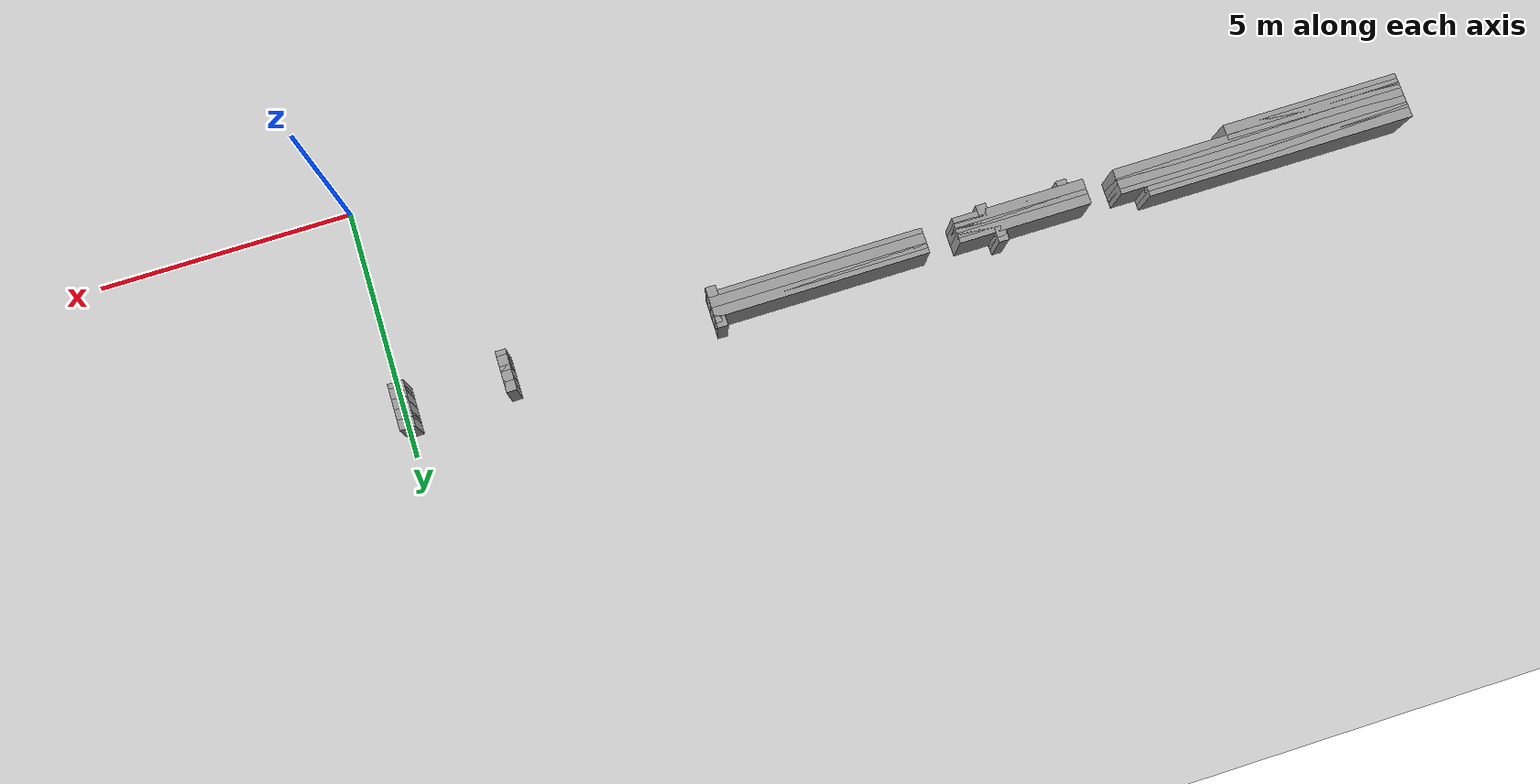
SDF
<sdf version="1.6">
 <world name="GridMap">
  <include><uri>model://sun</uri></include>
  <include><uri>model://ground_plane</uri></include>
  <model name="GridMap">
   <link name="Wall_(181.5,38.0)">
    <collision name="Wall_(181.5,38.0)_Collision">
     <geometry><box><size>3.5 0.2 1.0</size></box></geometry>
     <pose>-18.150000000000002 3.8000000000000003 0.5 0 -0 0</pose>
    </collision>
    <visual name="Wall_(181.5,38.0)_Visual">
     <geometry><box><size>3.5 0.2 1.0</size></box></geometry>
     <pose>-18.150000000000002 3.8000000000000003 0.5 0 -0 0</pose>
     <material>
      <script><uri>file://media/materials/scripts/gazebo.material</uri><name>Gazebo/Grey</name></script>
      <ambient>1 1 1 1</ambient>
     </material>
     <meta><layer>0</layer></meta>
    </visual>
    <pose>0 0 0.5 0 -0 0</pose>
   </link>
   <link name="Wall_(1.5,39.0)">
    <collision name="Wall_(1.5,39.0)_Collision">
     <geometry><box><size>0.30000000000000004 0.2 1.0</size></box></geometry>
     <pose>-0.15000000000000002 3.9000000000000004 0.5 0 -0 0</pose>
    </collision>
    <visual name="Wall_(1.5,39.0)_Visual">
     <geometry><box><size>0.30000000000000004 0.2 1.0</size></box></geometry>
     <pose>-0.15000000000000002 3.9000000000000004 0.5 0 -0 0</pose>
     <material>
      <script><uri>file://media/materials/scripts/gazebo.material</uri><name>Gazebo/Grey</name></script>
      <ambient>1 1 1 1</ambient>
     </material>
     <meta><layer>0</layer></meta>
    </visual>
    <pose>0 0 0.5 0 -0 0</pose>
   </link>
   <link name="Wall_(21.5,39.0)">
    <collision name="Wall_(21.5,39.0)_Collision">
     <geometry><box><size>0.2 0.2 1.0</size></box></geometry>
     <pose>-2.15 3.9000000000000004 0.5 0 -0 0</pose>
    </collision>
    <visual name="Wall_(21.5,39.0)_Visual">
     <geometry><box><size>0.2 0.2 1.0</size></box></geometry>
     <pose>-2.15 3.9000000000000004 0.5 0 -0 0</pose>
     <material>
      <script><uri>file://media/materials/scripts/gazebo.material</uri><name>Gazebo/Grey</name></script>
      <ambient>1 1 1 1</ambient>
     </material>
     <meta><layer>0</layer></meta>
    </visual>
    <pose>0 0 0.5 0 -0 0</pose>
   </link>
   <link name="Wall_(62.0,39.0)">
    <collision name="Wall_(62.0,39.0)_Collision">
     <geometry><box><size>0.2 0.2 1.0</size></box></geometry>
     <pose>-6.2 3.9000000000000004 0.5 0 -0 0</pose>
    </collision>
    <visual name="Wall_(62.0,39.0)_Visual">
     <geometry><box><size>0.2 0.2 1.0</size></box></geometry>
     <pose>-6.2 3.9000000000000004 0.5 0 -0 0</pose>
     <material>
      <script><uri>file://media/materials/scripts/gazebo.material</uri><name>Gazebo/Grey</name></script>
      <ambient>1 1 1 1</ambient>
     </material>
     <meta><layer>0</layer></meta>
    </visual>
    <pose>0 0 0.5 0 -0 0</pose>
   </link>
   <link name="Wall_(115.0,39.0)">
    <collision name="Wall_(115.0,39.0)_Collision">
     <geometry><box><size>0.2 0.2 1.0</size></box></geometry>
     <pose>-11.5 3.9000000000000004 0.5 0 -0 0</pose>
    </collision>
    <visual name="Wall_(115.0,39.0)_Visual">
     <geometry><box><size>0.2 0.2 1.0</size></box></geometry>
     <pose>-11.5 3.9000000000000004 0.5 0 -0 0</pose>
     <material>
      <script><uri>file://media/materials/scripts/gazebo.material</uri><name>Gazebo/Grey</name></script>
      <ambient>1 1 1 1</ambient>
     </material>
     <meta><layer>0</layer></meta>
    </visual>
    <pose>0 0 0.5 0 -0 0</pose>
   </link>
   <link name="Wall_(131.0,39.0)">
    <collision name="Wall_(131.0,39.0)_Collision">
     <geometry><box><size>0.2 0.2 1.0</size></box></geometry>
     <pose>-13.100000000000001 3.9000000000000004 0.5 0 -0 0</pose>
    </collision>
    <visual name="Wall_(131.0,39.0)_Visual">
     <geometry><box><size>0.2 0.2 1.0</size></box></geometry>
     <pose>-13.100000000000001 3.9000000000000004 0.5 0 -0 0</pose>
     <material>
      <script><uri>file://media/materials/scripts/gazebo.material</uri><name>Gazebo/Grey</name></script>
      <ambient>1 1 1 1</ambient>
     </material>
     <meta><layer>0</layer></meta>
    </visual>
    <pose>0 0 0.5 0 -0 0</pose>
   </link>
   <link name="Wall_(181.5,39.0)">
    <collision name="Wall_(181.5,39.0)_Collision">
     <geometry><box><size>3.5 0.2 1.0</size></box></geometry>
     <pose>-18.150000000000002 3.9000000000000004 0.5 0 -0 0</pose>
    </collision>
    <visual name="Wall_(181.5,39.0)_Visual">
     <geometry><box><size>3.5 0.2 1.0</size></box></geometry>
     <pose>-18.150000000000002 3.9000000000000004 0.5 0 -0 0</pose>
     <material>
      <script><uri>file://media/materials/scripts/gazebo.material</uri><name>Gazebo/Grey</name></script>
      <ambient>1 1 1 1</ambient>
     </material>
     <meta><layer>0</layer></meta>
    </visual>
    <pose>0 0 0.5 0 -0 0</pose>
   </link>
   <link name="Wall_(1.5,40.0)">
    <collision name="Wall_(1.5,40.0)_Collision">
     <geometry><box><size>0.30000000000000004 0.2 1.0</size></box></geometry>
     <pose>-0.15000000000000002 4.0 0.5 0 -0 0</pose>
    </collision>
    <visual name="Wall_(1.5,40.0)_Visual">
     <geometry><box><size>0.30000000000000004 0.2 1.0</size></box></geometry>
     <pose>-0.15000000000000002 4.0 0.5 0 -0 0</pose>
     <material>
      <script><uri>file://media/materials/scripts/gazebo.material</uri><name>Gazebo/Grey</name></script>
      <ambient>1 1 1 1</ambient>
     </material>
     <meta><layer>0</layer></meta>
    </visual>
    <pose>0 0 0.5 0 -0 0</pose>
   </link>
   <link name="Wall_(21.5,40.0)">
    <collision name="Wall_(21.5,40.0)_Collision">
     <geometry><box><size>0.2 0.2 1.0</size></box></geometry>
     <pose>-2.15 4.0 0.5 0 -0 0</pose>
    </collision>
    <visual name="Wall_(21.5,40.0)_Visual">
     <geometry><box><size>0.2 0.2 1.0</size></box></geometry>
     <pose>-2.15 4.0 0.5 0 -0 0</pose>
     <material>
      <script><uri>file://media/materials/scripts/gazebo.material</uri><name>Gazebo/Grey</name></script>
      <ambient>1 1 1 1</ambient>
     </material>
     <meta><layer>0</layer></meta>
    </visual>
    <pose>0 0 0.5 0 -0 0</pose>
   </link>
   <link name="Wall_(82.0,40.0)">
    <collision name="Wall_(82.0,40.0)_Collision">
     <geometry><box><size>4.2 0.2 1.0</size></box></geometry>
     <pose>-8.200000000000001 4.0 0.5 0 -0 0</pose>
    </collision>
    <visual name="Wall_(82.0,40.0)_Visual">
     <geometry><box><size>4.2 0.2 1.0</size></box></geometry>
     <pose>-8.200000000000001 4.0 0.5 0 -0 0</pose>
     <material>
      <script><uri>file://media/materials/scripts/gazebo.material</uri><name>Gazebo/Grey</name></script>
      <ambient>1 1 1 1</ambient>
     </material>
     <meta><layer>0</layer></meta>
    </visual>
    <pose>0 0 0.5 0 -0 0</pose>
   </link>
   <link name="Wall_(122.0,40.0)">
    <collision name="Wall_(122.0,40.0)_Collision">
     <geometry><box><size>2.6 0.2 1.0</size></box></geometry>
     <pose>-12.200000000000001 4.0 0.5 0 -0 0</pose>
    </collision>
    <visual name="Wall_(122.0,40.0)_Visual">
     <geometry><box><size>2.6 0.2 1.0</size></box></geometry>
     <pose>-12.200000000000001 4.0 0.5 0 -0 0</pose>
     <material>
      <script><uri>file://media/materials/scripts/gazebo.material</uri><name>Gazebo/Grey</name></script>
      <ambient>1 1 1 1</ambient>
     </material>
     <meta><layer>0</layer></meta>
    </visual>
    <pose>0 0 0.5 0 -0 0</pose>
   </link>
   <link name="Wall_(170.0,40.0)">
    <collision name="Wall_(170.0,40.0)_Collision">
     <geometry><box><size>5.800000000000001 0.2 1.0</size></box></geometry>
     <pose>-17.0 4.0 0.5 0 -0 0</pose>
    </collision>
    <visual name="Wall_(170.0,40.0)_Visual">
     <geometry><box><size>5.800000000000001 0.2 1.0</size></box></geometry>
     <pose>-17.0 4.0 0.5 0 -0 0</pose>
     <material>
      <script><uri>file://media/materials/scripts/gazebo.material</uri><name>Gazebo/Grey</name></script>
      <ambient>1 1 1 1</ambient>
     </material>
     <meta><layer>0</layer></meta>
    </visual>
    <pose>0 0 0.5 0 -0 0</pose>
   </link>
   <link name="Wall_(1.5,41.0)">
    <collision name="Wall_(1.5,41.0)_Collision">
     <geometry><box><size>0.30000000000000004 0.2 1.0</size></box></geometry>
     <pose>-0.15000000000000002 4.1000000000000005 0.5 0 -0 0</pose>
    </collision>
    <visual name="Wall_(1.5,41.0)_Visual">
     <geometry><box><size>0.30000000000000004 0.2 1.0</size></box></geometry>
     <pose>-0.15000000000000002 4.1000000000000005 0.5 0 -0 0</pose>
     <material>
      <script><uri>file://media/materials/scripts/gazebo.material</uri><name>Gazebo/Grey</name></script>
      <ambient>1 1 1 1</ambient>
     </material>
     <meta><layer>0</layer></meta>
    </visual>
    <pose>0 0 0.5 0 -0 0</pose>
   </link>
   <link name="Wall_(21.5,41.0)">
    <collision name="Wall_(21.5,41.0)_Collision">
     <geometry><box><size>0.2 0.2 1.0</size></box></geometry>
     <pose>-2.15 4.1000000000000005 0.5 0 -0 0</pose>
    </collision>
    <visual name="Wall_(21.5,41.0)_Visual">
     <geometry><box><size>0.2 0.2 1.0</size></box></geometry>
     <pose>-2.15 4.1000000000000005 0.5 0 -0 0</pose>
     <material>
      <script><uri>file://media/materials/scripts/gazebo.material</uri><name>Gazebo/Grey</name></script>
      <ambient>1 1 1 1</ambient>
     </material>
     <meta><layer>0</layer></meta>
    </visual>
    <pose>0 0 0.5 0 -0 0</pose>
   </link>
   <link name="Wall_(82.0,41.0)">
    <collision name="Wall_(82.0,41.0)_Collision">
     <geometry><box><size>4.2 0.2 1.0</size></box></geometry>
     <pose>-8.200000000000001 4.1000000000000005 0.5 0 -0 0</pose>
    </collision>
    <visual name="Wall_(82.0,41.0)_Visual">
     <geometry><box><size>4.2 0.2 1.0</size></box></geometry>
     <pose>-8.200000000000001 4.1000000000000005 0.5 0 -0 0</pose>
     <material>
      <script><uri>file://media/materials/scripts/gazebo.material</uri><name>Gazebo/Grey</name></script>
      <ambient>1 1 1 1</ambient>
     </material>
     <meta><layer>0</layer></meta>
    </visual>
    <pose>0 0 0.5 0 -0 0</pose>
   </link>
   <link name="Wall_(122.0,41.0)">
    <collision name="Wall_(122.0,41.0)_Collision">
     <geometry><box><size>2.6 0.2 1.0</size></box></geometry>
     <pose>-12.200000000000001 4.1000000000000005 0.5 0 -0 0</pose>
    </collision>
    <visual name="Wall_(122.0,41.0)_Visual">
     <geometry><box><size>2.6 0.2 1.0</size></box></geometry>
     <pose>-12.200000000000001 4.1000000000000005 0.5 0 -0 0</pose>
     <material>
      <script><uri>file://media/materials/scripts/gazebo.material</uri><name>Gazebo/Grey</name></script>
      <ambient>1 1 1 1</ambient>
     </material>
     <meta><layer>0</layer></meta>
    </visual>
    <pose>0 0 0.5 0 -0 0</pose>
   </link>
   <link name="Wall_(170.0,41.0)">
    <collision name="Wall_(170.0,41.0)_Collision">
     <geometry><box><size>5.800000000000001 0.2 1.0</size></box></geometry>
     <pose>-17.0 4.1000000000000005 0.5 0 -0 0</pose>
    </collision>
    <visual name="Wall_(170.0,41.0)_Visual">
     <geometry><box><size>5.800000000000001 0.2 1.0</size></box></geometry>
     <pose>-17.0 4.1000000000000005 0.5 0 -0 0</pose>
     <material>
      <script><uri>file://media/materials/scripts/gazebo.material</uri><name>Gazebo/Grey</name></script>
      <ambient>1 1 1 1</ambient>
     </material>
     <meta><layer>0</layer></meta>
    </visual>
    <pose>0 0 0.5 0 -0 0</pose>
   </link>
   <link name="Wall_(1.5,42.0)">
    <collision name="Wall_(1.5,42.0)_Collision">
     <geometry><box><size>0.30000000000000004 0.2 1.0</size></box></geometry>
     <pose>-0.15000000000000002 4.2 0.5 0 -0 0</pose>
    </collision>
    <visual name="Wall_(1.5,42.0)_Visual">
     <geometry><box><size>0.30000000000000004 0.2 1.0</size></box></geometry>
     <pose>-0.15000000000000002 4.2 0.5 0 -0 0</pose>
     <material>
      <script><uri>file://media/materials/scripts/gazebo.material</uri><name>Gazebo/Grey</name></script>
      <ambient>1 1 1 1</ambient>
     </material>
     <meta><layer>0</layer></meta>
    </visual>
    <pose>0 0 0.5 0 -0 0</pose>
   </link>
   <link name="Wall_(21.5,42.0)">
    <collision name="Wall_(21.5,42.0)_Collision">
     <geometry><box><size>0.2 0.2 1.0</size></box></geometry>
     <pose>-2.15 4.2 0.5 0 -0 0</pose>
    </collision>
    <visual name="Wall_(21.5,42.0)_Visual">
     <geometry><box><size>0.2 0.2 1.0</size></box></geometry>
     <pose>-2.15 4.2 0.5 0 -0 0</pose>
     <material>
      <script><uri>file://media/materials/scripts/gazebo.material</uri><name>Gazebo/Grey</name></script>
      <ambient>1 1 1 1</ambient>
     </material>
     <meta><layer>0</layer></meta>
    </visual>
    <pose>0 0 0.5 0 -0 0</pose>
   </link>
   <link name="Wall_(82.0,42.0)">
    <collision name="Wall_(82.0,42.0)_Collision">
     <geometry><box><size>4.2 0.2 1.0</size></box></geometry>
     <pose>-8.200000000000001 4.2 0.5 0 -0 0</pose>
    </collision>
    <visual name="Wall_(82.0,42.0)_Visual">
     <geometry><box><size>4.2 0.2 1.0</size></box></geometry>
     <pose>-8.200000000000001 4.2 0.5 0 -0 0</pose>
     <material>
      <script><uri>file://media/materials/scripts/gazebo.material</uri><name>Gazebo/Grey</name></script>
      <ambient>1 1 1 1</ambient>
     </material>
     <meta><layer>0</layer></meta>
    </visual>
    <pose>0 0 0.5 0 -0 0</pose>
   </link>
   <link name="Wall_(122.0,42.0)">
    <collision name="Wall_(122.0,42.0)_Collision">
     <geometry><box><size>2.6 0.2 1.0</size></box></geometry>
     <pose>-12.200000000000001 4.2 0.5 0 -0 0</pose>
    </collision>
    <visual name="Wall_(122.0,42.0)_Visual">
     <geometry><box><size>2.6 0.2 1.0</size></box></geometry>
     <pose>-12.200000000000001 4.2 0.5 0 -0 0</pose>
     <material>
      <script><uri>file://media/materials/scripts/gazebo.material</uri><name>Gazebo/Grey</name></script>
      <ambient>1 1 1 1</ambient>
     </material>
     <meta><layer>0</layer></meta>
    </visual>
    <pose>0 0 0.5 0 -0 0</pose>
   </link>
   <link name="Wall_(170.0,42.0)">
    <collision name="Wall_(170.0,42.0)_Collision">
     <geometry><box><size>5.800000000000001 0.2 1.0</size></box></geometry>
     <pose>-17.0 4.2 0.5 0 -0 0</pose>
    </collision>
    <visual name="Wall_(170.0,42.0)_Visual">
     <geometry><box><size>5.800000000000001 0.2 1.0</size></box></geometry>
     <pose>-17.0 4.2 0.5 0 -0 0</pose>
     <material>
      <script><uri>file://media/materials/scripts/gazebo.material</uri><name>Gazebo/Grey</name></script>
      <ambient>1 1 1 1</ambient>
     </material>
     <meta><layer>0</layer></meta>
    </visual>
    <pose>0 0 0.5 0 -0 0</pose>
   </link>
   <link name="Wall_(1.5,43.0)">
    <collision name="Wall_(1.5,43.0)_Collision">
     <geometry><box><size>0.30000000000000004 0.2 1.0</size></box></geometry>
     <pose>-0.15000000000000002 4.3 0.5 0 -0 0</pose>
    </collision>
    <visual name="Wall_(1.5,43.0)_Visual">
     <geometry><box><size>0.30000000000000004 0.2 1.0</size></box></geometry>
     <pose>-0.15000000000000002 4.3 0.5 0 -0 0</pose>
     <material>
      <script><uri>file://media/materials/scripts/gazebo.material</uri><name>Gazebo/Grey</name></script>
      <ambient>1 1 1 1</ambient>
     </material>
     <meta><layer>0</layer></meta>
    </visual>
    <pose>0 0 0.5 0 -0 0</pose>
   </link>
   <link name="Wall_(21.5,43.0)">
    <collision name="Wall_(21.5,43.0)_Collision">
     <geometry><box><size>0.2 0.2 1.0</size></box></geometry>
     <pose>-2.15 4.3 0.5 0 -0 0</pose>
    </collision>
    <visual name="Wall_(21.5,43.0)_Visual">
     <geometry><box><size>0.2 0.2 1.0</size></box></geometry>
     <pose>-2.15 4.3 0.5 0 -0 0</pose>
     <material>
      <script><uri>file://media/materials/scripts/gazebo.material</uri><name>Gazebo/Grey</name></script>
      <ambient>1 1 1 1</ambient>
     </material>
     <meta><layer>0</layer></meta>
    </visual>
    <pose>0 0 0.5 0 -0 0</pose>
   </link>
   <link name="Wall_(82.0,43.0)">
    <collision name="Wall_(82.0,43.0)_Collision">
     <geometry><box><size>4.2 0.2 1.0</size></box></geometry>
     <pose>-8.200000000000001 4.3 0.5 0 -0 0</pose>
    </collision>
    <visual name="Wall_(82.0,43.0)_Visual">
     <geometry><box><size>4.2 0.2 1.0</size></box></geometry>
     <pose>-8.200000000000001 4.3 0.5 0 -0 0</pose>
     <material>
      <script><uri>file://media/materials/scripts/gazebo.material</uri><name>Gazebo/Grey</name></script>
      <ambient>1 1 1 1</ambient>
     </material>
     <meta><layer>0</layer></meta>
    </visual>
    <pose>0 0 0.5 0 -0 0</pose>
   </link>
   <link name="Wall_(122.0,43.0)">
    <collision name="Wall_(122.0,43.0)_Collision">
     <geometry><box><size>2.6 0.2 1.0</size></box></geometry>
     <pose>-12.200000000000001 4.3 0.5 0 -0 0</pose>
    </collision>
    <visual name="Wall_(122.0,43.0)_Visual">
     <geometry><box><size>2.6 0.2 1.0</size></box></geometry>
     <pose>-12.200000000000001 4.3 0.5 0 -0 0</pose>
     <material>
      <script><uri>file://media/materials/scripts/gazebo.material</uri><name>Gazebo/Grey</name></script>
      <ambient>1 1 1 1</ambient>
     </material>
     <meta><layer>0</layer></meta>
    </visual>
    <pose>0 0 0.5 0 -0 0</pose>
   </link>
   <link name="Wall_(170.0,43.0)">
    <collision name="Wall_(170.0,43.0)_Collision">
     <geometry><box><size>5.800000000000001 0.2 1.0</size></box></geometry>
     <pose>-17.0 4.3 0.5 0 -0 0</pose>
    </collision>
    <visual name="Wall_(170.0,43.0)_Visual">
     <geometry><box><size>5.800000000000001 0.2 1.0</size></box></geometry>
     <pose>-17.0 4.3 0.5 0 -0 0</pose>
     <material>
      <script><uri>file://media/materials/scripts/gazebo.material</uri><name>Gazebo/Grey</name></script>
      <ambient>1 1 1 1</ambient>
     </material>
     <meta><layer>0</layer></meta>
    </visual>
    <pose>0 0 0.5 0 -0 0</pose>
   </link>
   <link name="Wall_(1.5,44.0)">
    <collision name="Wall_(1.5,44.0)_Collision">
     <geometry><box><size>0.30000000000000004 0.2 1.0</size></box></geometry>
     <pose>-0.15000000000000002 4.4 0.5 0 -0 0</pose>
    </collision>
    <visual name="Wall_(1.5,44.0)_Visual">
     <geometry><box><size>0.30000000000000004 0.2 1.0</size></box></geometry>
     <pose>-0.15000000000000002 4.4 0.5 0 -0 0</pose>
     <material>
      <script><uri>file://media/materials/scripts/gazebo.material</uri><name>Gazebo/Grey</name></script>
      <ambient>1 1 1 1</ambient>
     </material>
     <meta><layer>0</layer></meta>
    </visual>
    <pose>0 0 0.5 0 -0 0</pose>
   </link>
   <link name="Wall_(21.5,44.0)">
    <collision name="Wall_(21.5,44.0)_Collision">
     <geometry><box><size>0.2 0.2 1.0</size></box></geometry>
     <pose>-2.15 4.4 0.5 0 -0 0</pose>
    </collision>
    <visual name="Wall_(21.5,44.0)_Visual">
     <geometry><box><size>0.2 0.2 1.0</size></box></geometry>
     <pose>-2.15 4.4 0.5 0 -0 0</pose>
     <material>
      <script><uri>file://media/materials/scripts/gazebo.material</uri><name>Gazebo/Grey</name></script>
      <ambient>1 1 1 1</ambient>
     </material>
     <meta><layer>0</layer></meta>
    </visual>
    <pose>0 0 0.5 0 -0 0</pose>
   </link>
   <link name="Wall_(62.0,44.0)">
    <collision name="Wall_(62.0,44.0)_Collision">
     <geometry><box><size>0.2 0.2 1.0</size></box></geometry>
     <pose>-6.2 4.4 0.5 0 -0 0</pose>
    </collision>
    <visual name="Wall_(62.0,44.0)_Visual">
     <geometry><box><size>0.2 0.2 1.0</size></box></geometry>
     <pose>-6.2 4.4 0.5 0 -0 0</pose>
     <material>
      <script><uri>file://media/materials/scripts/gazebo.material</uri><name>Gazebo/Grey</name></script>
      <ambient>1 1 1 1</ambient>
     </material>
     <meta><layer>0</layer></meta>
    </visual>
    <pose>0 0 0.5 0 -0 0</pose>
   </link>
   <link name="Wall_(117.0,44.0)">
    <collision name="Wall_(117.0,44.0)_Collision">
     <geometry><box><size>0.2 0.2 1.0</size></box></geometry>
     <pose>-11.700000000000001 4.4 0.5 0 -0 0</pose>
    </collision>
    <visual name="Wall_(117.0,44.0)_Visual">
     <geometry><box><size>0.2 0.2 1.0</size></box></geometry>
     <pose>-11.700000000000001 4.4 0.5 0 -0 0</pose>
     <material>
      <script><uri>file://media/materials/scripts/gazebo.material</uri><name>Gazebo/Grey</name></script>
      <ambient>1 1 1 1</ambient>
     </material>
     <meta><layer>0</layer></meta>
    </visual>
    <pose>0 0 0.5 0 -0 0</pose>
   </link>
   <link name="Wall_(172.5,44.0)">
    <collision name="Wall_(172.5,44.0)_Collision">
     <geometry><box><size>5.300000000000001 0.2 1.0</size></box></geometry>
     <pose>-17.25 4.4 0.5 0 -0 0</pose>
    </collision>
    <visual name="Wall_(172.5,44.0)_Visual">
     <geometry><box><size>5.300000000000001 0.2 1.0</size></box></geometry>
     <pose>-17.25 4.4 0.5 0 -0 0</pose>
     <material>
      <script><uri>file://media/materials/scripts/gazebo.material</uri><name>Gazebo/Grey</name></script>
      <ambient>1 1 1 1</ambient>
     </material>
     <meta><layer>0</layer></meta>
    </visual>
    <pose>0 0 0.5 0 -0 0</pose>
   </link>
   <link name="Wall_(1.5,45.0)">
    <collision name="Wall_(1.5,45.0)_Collision">
     <geometry><box><size>0.30000000000000004 0.2 1.0</size></box></geometry>
     <pose>-0.15000000000000002 4.5 0.5 0 -0 0</pose>
    </collision>
    <visual name="Wall_(1.5,45.0)_Visual">
     <geometry><box><size>0.30000000000000004 0.2 1.0</size></box></geometry>
     <pose>-0.15000000000000002 4.5 0.5 0 -0 0</pose>
     <material>
      <script><uri>file://media/materials/scripts/gazebo.material</uri><name>Gazebo/Grey</name></script>
      <ambient>1 1 1 1</ambient>
     </material>
     <meta><layer>0</layer></meta>
    </visual>
    <pose>0 0 0.5 0 -0 0</pose>
   </link>
   <link name="Wall_(21.5,45.0)">
    <collision name="Wall_(21.5,45.0)_Collision">
     <geometry><box><size>0.2 0.2 1.0</size></box></geometry>
     <pose>-2.15 4.5 0.5 0 -0 0</pose>
    </collision>
    <visual name="Wall_(21.5,45.0)_Visual">
     <geometry><box><size>0.2 0.2 1.0</size></box></geometry>
     <pose>-2.15 4.5 0.5 0 -0 0</pose>
     <material>
      <script><uri>file://media/materials/scripts/gazebo.material</uri><name>Gazebo/Grey</name></script>
      <ambient>1 1 1 1</ambient>
     </material>
     <meta><layer>0</layer></meta>
    </visual>
    <pose>0 0 0.5 0 -0 0</pose>
   </link>
   <link name="Wall_(62.0,45.0)">
    <collision name="Wall_(62.0,45.0)_Collision">
     <geometry><box><size>0.2 0.2 1.0</size></box></geometry>
     <pose>-6.2 4.5 0.5 0 -0 0</pose>
    </collision>
    <visual name="Wall_(62.0,45.0)_Visual">
     <geometry><box><size>0.2 0.2 1.0</size></box></geometry>
     <pose>-6.2 4.5 0.5 0 -0 0</pose>
     <material>
      <script><uri>file://media/materials/scripts/gazebo.material</uri><name>Gazebo/Grey</name></script>
      <ambient>1 1 1 1</ambient>
     </material>
     <meta><layer>0</layer></meta>
    </visual>
    <pose>0 0 0.5 0 -0 0</pose>
   </link>
   <link name="Wall_(117.0,45.0)">
    <collision name="Wall_(117.0,45.0)_Collision">
     <geometry><box><size>0.2 0.2 1.0</size></box></geometry>
     <pose>-11.700000000000001 4.5 0.5 0 -0 0</pose>
    </collision>
    <visual name="Wall_(117.0,45.0)_Visual">
     <geometry><box><size>0.2 0.2 1.0</size></box></geometry>
     <pose>-11.700000000000001 4.5 0.5 0 -0 0</pose>
     <material>
      <script><uri>file://media/materials/scripts/gazebo.material</uri><name>Gazebo/Grey</name></script>
      <ambient>1 1 1 1</ambient>
     </material>
     <meta><layer>0</layer></meta>
    </visual>
    <pose>0 0 0.5 0 -0 0</pose>
   </link>
   <link name="Wall_(172.5,45.0)">
    <collision name="Wall_(172.5,45.0)_Collision">
     <geometry><box><size>5.300000000000001 0.2 1.0</size></box></geometry>
     <pose>-17.25 4.5 0.5 0 -0 0</pose>
    </collision>
    <visual name="Wall_(172.5,45.0)_Visual">
     <geometry><box><size>5.300000000000001 0.2 1.0</size></box></geometry>
     <pose>-17.25 4.5 0.5 0 -0 0</pose>
     <material>
      <script><uri>file://media/materials/scripts/gazebo.material</uri><name>Gazebo/Grey</name></script>
      <ambient>1 1 1 1</ambient>
     </material>
     <meta><layer>0</layer></meta>
    </visual>
    <pose>0 0 0.5 0 -0 0</pose>
   </link>
   <link name="Wall_(1.5,46.0)">
    <collision name="Wall_(1.5,46.0)_Collision">
     <geometry><box><size>0.30000000000000004 0.2 1.0</size></box></geometry>
     <pose>-0.15000000000000002 4.6000000000000005 0.5 0 -0 0</pose>
    </collision>
    <visual name="Wall_(1.5,46.0)_Visual">
     <geometry><box><size>0.30000000000000004 0.2 1.0</size></box></geometry>
     <pose>-0.15000000000000002 4.6000000000000005 0.5 0 -0 0</pose>
     <material>
      <script><uri>file://media/materials/scripts/gazebo.material</uri><name>Gazebo/Grey</name></script>
      <ambient>1 1 1 1</ambient>
     </material>
     <meta><layer>0</layer></meta>
    </visual>
    <pose>0 0 0.5 0 -0 0</pose>
   </link>
   <static>1</static>
  </model>
 </world>
</sdf>
